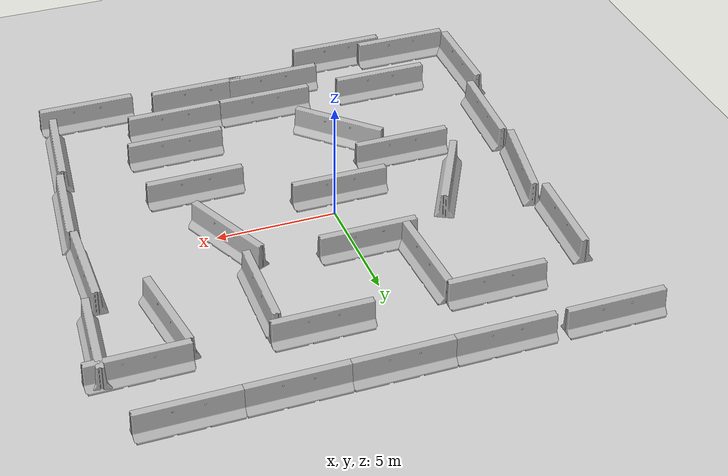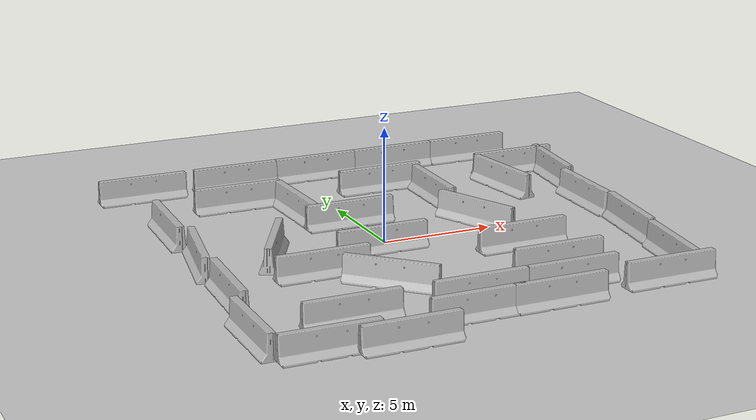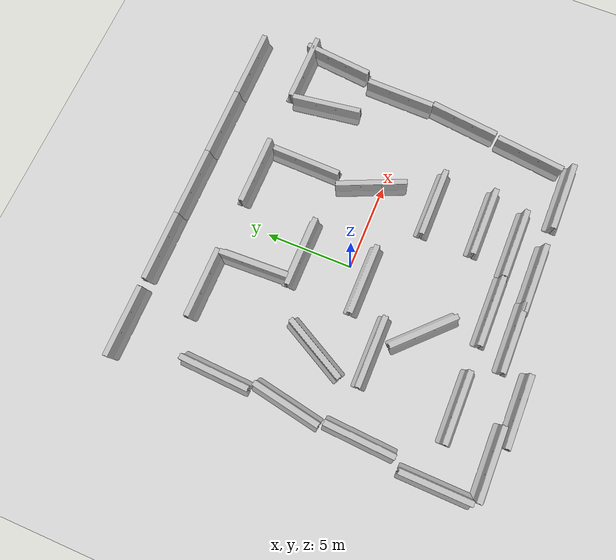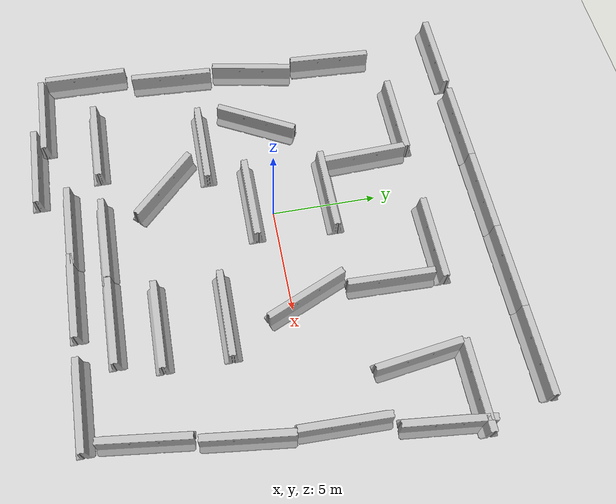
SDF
<sdf version="1.4">
 <world name="default">
  <light name="sun" type="directional">
   <pose>0 0 10 0 -0 0</pose>
   <diffuse>0.8 0.8 0.8 1</diffuse>
   <specular>0.2 0.2 0.2 1</specular>
   <attenuation>
    <range>1000</range>
    <constant>0.9</constant>
    <linear>0.01</linear>
    <quadratic>0.001</quadratic>
   </attenuation>
   <direction>-0.5 0.1 -0.9</direction>
  </light>
  <model name="ground_plane">
   <static>1</static>
   <link name="link">
    <collision name="collision">
     <geometry><plane><normal>0 0 1</normal><size>100 100</size></plane></geometry>
     <surface><friction><ode><mu>100</mu><mu2>50</mu2></ode></friction></surface>
    </collision>
    <visual name="visual">
     <cast_shadows>0</cast_shadows>
     <geometry><plane><normal>0 0 1</normal><size>100 100</size></plane></geometry>
     <material>
      <script><uri>file://media/materials/scripts/gazebo.material</uri><name>Gazebo/Grey</name></script>
     </material>
    </visual>
    <velocity_decay><linear>0</linear><angular>0</angular></velocity_decay>
   </link>
  </model>
  <physics type="ode">
   <max_step_size>0.001</max_step_size>
   <real_time_factor>1</real_time_factor>
   <real_time_update_rate>1000</real_time_update_rate>
   <gravity>0 0 -9.8</gravity>
  </physics>
  <scene><ambient>0.4 0.4 0.4 1</ambient><background>0.7 0.7 0.7 1</background><shadows>1</shadows></scene>
  <spherical_coordinates>
   <surface_model>EARTH_WGS84</surface_model>
   <latitude_deg>0</latitude_deg>
   <longitude_deg>0</longitude_deg>
   <elevation>0</elevation>
   <heading_deg>0</heading_deg>
  </spherical_coordinates>
  <model name="jersey_barrier">
   <static>1</static>
   <link name="link">
    <visual name="visual">
     <geometry><mesh><uri>model://jersey_barrier/meshes/jersey_barrier.dae</uri></mesh></geometry>
    </visual>
    <collision name="upright">
     <pose>0 0 0.5715 0 -0 0</pose>
     <geometry><box><size>4.06542 0.3063 1.143</size></box></geometry>
    </collision>
    <collision name="base">
     <pose>0 0 0.032258 0 -0 0</pose>
     <geometry><box><size>4.06542 0.8107 0.064516</size></box></geometry>
    </collision>
    <collision name="base2">
     <pose>0 0 0.1 0 -0 0</pose>
     <geometry><box><size>4.06542 0.65 0.1</size></box></geometry>
    </collision>
    <collision name="base3">
     <pose>0 0 0.2 0 -0 0</pose>
     <geometry><box><size>4.06542 0.5 0.1</size></box></geometry>
    </collision>
    <collision name="left-angle">
     <pose>0 -0.224 0.2401 0.9 -0 0</pose>
     <geometry><box><size>4.06542 0.5 0.064516</size></box></geometry>
    </collision>
    <collision name="right-angle">
     <pose>0 0.224 0.2401 -0.9 0 0</pose>
     <geometry><box><size>4.06542 0.5 0.064516</size></box></geometry>
    </collision>
    <velocity_decay><linear>0</linear><angular>0</angular></velocity_decay>
   </link>
   <pose>7.97668 -9.58752 0.147865 0 -0 0</pose>
  </model>
  <model name="jersey_barrier_0">
   <static>1</static>
   <link name="link">
    <visual name="visual">
     <geometry><mesh><uri>model://jersey_barrier/meshes/jersey_barrier.dae</uri></mesh></geometry>
    </visual>
    <collision name="upright">
     <pose>0 0 0.5715 0 -0 0</pose>
     <geometry><box><size>4.06542 0.3063 1.143</size></box></geometry>
    </collision>
    <collision name="base">
     <pose>0 0 0.032258 0 -0 0</pose>
     <geometry><box><size>4.06542 0.8107 0.064516</size></box></geometry>
    </collision>
    <collision name="base2">
     <pose>0 0 0.1 0 -0 0</pose>
     <geometry><box><size>4.06542 0.65 0.1</size></box></geometry>
    </collision>
    <collision name="base3">
     <pose>0 0 0.2 0 -0 0</pose>
     <geometry><box><size>4.06542 0.5 0.1</size></box></geometry>
    </collision>
    <collision name="left-angle">
     <pose>0 -0.224 0.2401 0.9 -0 0</pose>
     <geometry><box><size>4.06542 0.5 0.064516</size></box></geometry>
    </collision>
    <collision name="right-angle">
     <pose>0 0.224 0.2401 -0.9 0 0</pose>
     <geometry><box><size>4.06542 0.5 0.064516</size></box></geometry>
    </collision>
    <velocity_decay><linear>0</linear><angular>0</angular></velocity_decay>
   </link>
   <pose>3 -9.59869 0 0 -0 0</pose>
  </model>
  <model name="jersey_barrier_1">
   <static>1</static>
   <link name="link">
    <visual name="visual">
     <geometry><mesh><uri>model://jersey_barrier/meshes/jersey_barrier.dae</uri></mesh></geometry>
    </visual>
    <collision name="upright">
     <pose>0 0 0.5715 0 -0 0</pose>
     <geometry><box><size>4.06542 0.3063 1.143</size></box></geometry>
    </collision>
    <collision name="base">
     <pose>0 0 0.032258 0 -0 0</pose>
     <geometry><box><size>4.06542 0.8107 0.064516</size></box></geometry>
    </collision>
    <collision name="base2">
     <pose>0 0 0.1 0 -0 0</pose>
     <geometry><box><size>4.06542 0.65 0.1</size></box></geometry>
    </collision>
    <collision name="base3">
     <pose>0 0 0.2 0 -0 0</pose>
     <geometry><box><size>4.06542 0.5 0.1</size></box></geometry>
    </collision>
    <collision name="left-angle">
     <pose>0 -0.224 0.2401 0.9 -0 0</pose>
     <geometry><box><size>4.06542 0.5 0.064516</size></box></geometry>
    </collision>
    <collision name="right-angle">
     <pose>0 0.224 0.2401 -0.9 0 0</pose>
     <geometry><box><size>4.06542 0.5 0.064516</size></box></geometry>
    </collision>
    <velocity_decay><linear>0</linear><angular>0</angular></velocity_decay>
   </link>
   <pose>4.47361 -8 0 0 -0 0</pose>
  </model>
  <model name="jersey_barrier_2">
   <static>1</static>
   <link name="link">
    <visual name="visual">
     <geometry><mesh><uri>model://jersey_barrier/meshes/jersey_barrier.dae</uri></mesh></geometry>
    </visual>
    <collision name="upright">
     <pose>0 0 0.5715 0 -0 0</pose>
     <geometry><box><size>4.06542 0.3063 1.143</size></box></geometry>
    </collision>
    <collision name="base">
     <pose>0 0 0.032258 0 -0 0</pose>
     <geometry><box><size>4.06542 0.8107 0.064516</size></box></geometry>
    </collision>
    <collision name="base2">
     <pose>0 0 0.1 0 -0 0</pose>
     <geometry><box><size>4.06542 0.65 0.1</size></box></geometry>
    </collision>
    <collision name="base3">
     <pose>0 0 0.2 0 -0 0</pose>
     <geometry><box><size>4.06542 0.5 0.1</size></box></geometry>
    </collision>
    <collision name="left-angle">
     <pose>0 -0.224 0.2401 0.9 -0 0</pose>
     <geometry><box><size>4.06542 0.5 0.064516</size></box></geometry>
    </collision>
    <collision name="right-angle">
     <pose>0 0.224 0.2401 -0.9 0 0</pose>
     <geometry><box><size>4.06542 0.5 0.064516</size></box></geometry>
    </collision>
    <velocity_decay><linear>0</linear><angular>0</angular></velocity_decay>
   </link>
   <pose>0.406529 -8 0 0 -0 0</pose>
  </model>
  <model name="jersey_barrier_3">
   <static>1</static>
   <link name="link">
    <visual name="visual">
     <geometry><mesh><uri>model://jersey_barrier/meshes/jersey_barrier.dae</uri></mesh></geometry>
    </visual>
    <collision name="upright">
     <pose>0 0 0.5715 0 -0 0</pose>
     <geometry><box><size>4.06542 0.3063 1.143</size></box></geometry>
    </collision>
    <collision name="base">
     <pose>0 0 0.032258 0 -0 0</pose>
     <geometry><box><size>4.06542 0.8107 0.064516</size></box></geometry>
    </collision>
    <collision name="base2">
     <pose>0 0 0.1 0 -0 0</pose>
     <geometry><box><size>4.06542 0.65 0.1</size></box></geometry>
    </collision>
    <collision name="base3">
     <pose>0 0 0.2 0 -0 0</pose>
     <geometry><box><size>4.06542 0.5 0.1</size></box></geometry>
    </collision>
    <collision name="left-angle">
     <pose>0 -0.224 0.2401 0.9 -0 0</pose>
     <geometry><box><size>4.06542 0.5 0.064516</size></box></geometry>
    </collision>
    <collision name="right-angle">
     <pose>0 0.224 0.2401 -0.9 0 0</pose>
     <geometry><box><size>4.06542 0.5 0.064516</size></box></geometry>
    </collision>
    <velocity_decay><linear>0</linear><angular>0</angular></velocity_decay>
   </link>
   <pose>-0.489482 -9.56042 0 0 -0 0</pose>
  </model>
  <model name="jersey_barrier_4">
   <static>1</static>
   <link name="link">
    <visual name="visual">
     <geometry><mesh><uri>model://jersey_barrier/meshes/jersey_barrier.dae</uri></mesh></geometry>
    </visual>
    <collision name="upright">
     <pose>0 0 0.5715 0 -0 0</pose>
     <geometry><box><size>4.06542 0.3063 1.143</size></box></geometry>
    </collision>
    <collision name="base">
     <pose>0 0 0.032258 0 -0 0</pose>
     <geometry><box><size>4.06542 0.8107 0.064516</size></box></geometry>
    </collision>
    <collision name="base2">
     <pose>0 0 0.1 0 -0 0</pose>
     <geometry><box><size>4.06542 0.65 0.1</size></box></geometry>
    </collision>
    <collision name="base3">
     <pose>0 0 0.2 0 -0 0</pose>
     <geometry><box><size>4.06542 0.5 0.1</size></box></geometry>
    </collision>
    <collision name="left-angle">
     <pose>0 -0.224 0.2401 0.9 -0 0</pose>
     <geometry><box><size>4.06542 0.5 0.064516</size></box></geometry>
    </collision>
    <collision name="right-angle">
     <pose>0 0.224 0.2401 -0.9 0 0</pose>
     <geometry><box><size>4.06542 0.5 0.064516</size></box></geometry>
    </collision>
    <velocity_decay><linear>0</linear><angular>0</angular></velocity_decay>
   </link>
   <pose>5 -6 0 0 -0 0</pose>
  </model>
  <model name="jersey_barrier_5">
   <static>1</static>
   <link name="link">
    <visual name="visual">
     <geometry><mesh><uri>model://jersey_barrier/meshes/jersey_barrier.dae</uri></mesh></geometry>
    </visual>
    <collision name="upright">
     <pose>0 0 0.5715 0 -0 0</pose>
     <geometry><box><size>4.06542 0.3063 1.143</size></box></geometry>
    </collision>
    <collision name="base">
     <pose>0 0 0.032258 0 -0 0</pose>
     <geometry><box><size>4.06542 0.8107 0.064516</size></box></geometry>
    </collision>
    <collision name="base2">
     <pose>0 0 0.1 0 -0 0</pose>
     <geometry><box><size>4.06542 0.65 0.1</size></box></geometry>
    </collision>
    <collision name="base3">
     <pose>0 0 0.2 0 -0 0</pose>
     <geometry><box><size>4.06542 0.5 0.1</size></box></geometry>
    </collision>
    <collision name="left-angle">
     <pose>0 -0.224 0.2401 0.9 -0 0</pose>
     <geometry><box><size>4.06542 0.5 0.064516</size></box></geometry>
    </collision>
    <collision name="right-angle">
     <pose>0 0.224 0.2401 -0.9 0 0</pose>
     <geometry><box><size>4.06542 0.5 0.064516</size></box></geometry>
    </collision>
    <velocity_decay><linear>0</linear><angular>0</angular></velocity_decay>
   </link>
   <pose>9.79167 -7.07228 0 -4.5e-05 0.000384 1.45415</pose>
  </model>
  <model name="jersey_barrier_6">
   <static>1</static>
   <link name="link">
    <visual name="visual">
     <geometry><mesh><uri>model://jersey_barrier/meshes/jersey_barrier.dae</uri></mesh></geometry>
    </visual>
    <collision name="upright">
     <pose>0 0 0.5715 0 -0 0</pose>
     <geometry><box><size>4.06542 0.3063 1.143</size></box></geometry>
    </collision>
    <collision name="base">
     <pose>0 0 0.032258 0 -0 0</pose>
     <geometry><box><size>4.06542 0.8107 0.064516</size></box></geometry>
    </collision>
    <collision name="base2">
     <pose>0 0 0.1 0 -0 0</pose>
     <geometry><box><size>4.06542 0.65 0.1</size></box></geometry>
    </collision>
    <collision name="base3">
     <pose>0 0 0.2 0 -0 0</pose>
     <geometry><box><size>4.06542 0.5 0.1</size></box></geometry>
    </collision>
    <collision name="left-angle">
     <pose>0 -0.224 0.2401 0.9 -0 0</pose>
     <geometry><box><size>4.06542 0.5 0.064516</size></box></geometry>
    </collision>
    <collision name="right-angle">
     <pose>0 0.224 0.2401 -0.9 0 0</pose>
     <geometry><box><size>4.06542 0.5 0.064516</size></box></geometry>
    </collision>
    <velocity_decay><linear>0</linear><angular>0</angular></velocity_decay>
   </link>
   <pose>-7.48898 10 0 0 -0 0</pose>
  </model>
  <model name="jersey_barrier_7">
   <static>1</static>
   <link name="link">
    <visual name="visual">
     <geometry><mesh><uri>model://jersey_barrier/meshes/jersey_barrier.dae</uri></mesh></geometry>
    </visual>
    <collision name="upright">
     <pose>0 0 0.5715 0 -0 0</pose>
     <geometry><box><size>4.06542 0.3063 1.143</size></box></geometry>
    </collision>
    <collision name="base">
     <pose>0 0 0.032258 0 -0 0</pose>
     <geometry><box><size>4.06542 0.8107 0.064516</size></box></geometry>
    </collision>
    <collision name="base2">
     <pose>0 0 0.1 0 -0 0</pose>
     <geometry><box><size>4.06542 0.65 0.1</size></box></geometry>
    </collision>
    <collision name="base3">
     <pose>0 0 0.2 0 -0 0</pose>
     <geometry><box><size>4.06542 0.5 0.1</size></box></geometry>
    </collision>
    <collision name="left-angle">
     <pose>0 -0.224 0.2401 0.9 -0 0</pose>
     <geometry><box><size>4.06542 0.5 0.064516</size></box></geometry>
    </collision>
    <collision name="right-angle">
     <pose>0 0.224 0.2401 -0.9 0 0</pose>
     <geometry><box><size>4.06542 0.5 0.064516</size></box></geometry>
    </collision>
    <velocity_decay><linear>0</linear><angular>0</angular></velocity_decay>
   </link>
   <pose>-3 10 0 0 -0 0</pose>
  </model>
  <model name="jersey_barrier_8">
   <static>1</static>
   <link name="link">
    <visual name="visual">
     <geometry><mesh><uri>model://jersey_barrier/meshes/jersey_barrier.dae</uri></mesh></geometry>
    </visual>
    <collision name="upright">
     <pose>0 0 0.5715 0 -0 0</pose>
     <geometry><box><size>4.06542 0.3063 1.143</size></box></geometry>
    </collision>
    <collision name="base">
     <pose>0 0 0.032258 0 -0 0</pose>
     <geometry><box><size>4.06542 0.8107 0.064516</size></box></geometry>
    </collision>
    <collision name="base2">
     <pose>0 0 0.1 0 -0 0</pose>
     <geometry><box><size>4.06542 0.65 0.1</size></box></geometry>
    </collision>
    <collision name="base3">
     <pose>0 0 0.2 0 -0 0</pose>
     <geometry><box><size>4.06542 0.5 0.1</size></box></geometry>
    </collision>
    <collision name="left-angle">
     <pose>0 -0.224 0.2401 0.9 -0 0</pose>
     <geometry><box><size>4.06542 0.5 0.064516</size></box></geometry>
    </collision>
    <collision name="right-angle">
     <pose>0 0.224 0.2401 -0.9 0 0</pose>
     <geometry><box><size>4.06542 0.5 0.064516</size></box></geometry>
    </collision>
    <velocity_decay><linear>0</linear><angular>0</angular></velocity_decay>
   </link>
   <pose>1 10 0 0 -0 0</pose>
  </model>
  <model name="jersey_barrier_9">
   <static>1</static>
   <link name="link">
    <visual name="visual">
     <geometry><mesh><uri>model://jersey_barrier/meshes/jersey_barrier.dae</uri></mesh></geometry>
    </visual>
    <collision name="upright">
     <pose>0 0 0.5715 0 -0 0</pose>
     <geometry><box><size>4.06542 0.3063 1.143</size></box></geometry>
    </collision>
    <collision name="base">
     <pose>0 0 0.032258 0 -0 0</pose>
     <geometry><box><size>4.06542 0.8107 0.064516</size></box></geometry>
    </collision>
    <collision name="base2">
     <pose>0 0 0.1 0 -0 0</pose>
     <geometry><box><size>4.06542 0.65 0.1</size></box></geometry>
    </collision>
    <collision name="base3">
     <pose>0 0 0.2 0 -0 0</pose>
     <geometry><box><size>4.06542 0.5 0.1</size></box></geometry>
    </collision>
    <collision name="left-angle">
     <pose>0 -0.224 0.2401 0.9 -0 0</pose>
     <geometry><box><size>4.06542 0.5 0.064516</size></box></geometry>
    </collision>
    <collision name="right-angle">
     <pose>0 0.224 0.2401 -0.9 0 0</pose>
     <geometry><box><size>4.06542 0.5 0.064516</size></box></geometry>
    </collision>
    <velocity_decay><linear>0</linear><angular>0</angular></velocity_decay>
   </link>
   <pose>5 10 0 0 -0 0</pose>
  </model>
  <model name="jersey_barrier_10">
   <static>1</static>
   <link name="link">
    <visual name="visual">
     <geometry><mesh><uri>model://jersey_barrier/meshes/jersey_barrier.dae</uri></mesh></geometry>
    </visual>
    <collision name="upright">
     <pose>0 0 0.5715 0 -0 0</pose>
     <geometry><box><size>4.06542 0.3063 1.143</size></box></geometry>
    </collision>
    <collision name="base">
     <pose>0 0 0.032258 0 -0 0</pose>
     <geometry><box><size>4.06542 0.8107 0.064516</size></box></geometry>
    </collision>
    <collision name="base2">
     <pose>0 0 0.1 0 -0 0</pose>
     <geometry><box><size>4.06542 0.65 0.1</size></box></geometry>
    </collision>
    <collision name="base3">
     <pose>0 0 0.2 0 -0 0</pose>
     <geometry><box><size>4.06542 0.5 0.1</size></box></geometry>
    </collision>
    <collision name="left-angle">
     <pose>0 -0.224 0.2401 0.9 -0 0</pose>
     <geometry><box><size>4.06542 0.5 0.064516</size></box></geometry>
    </collision>
    <collision name="right-angle">
     <pose>0 0.224 0.2401 -0.9 0 0</pose>
     <geometry><box><size>4.06542 0.5 0.064516</size></box></geometry>
    </collision>
    <velocity_decay><linear>0</linear><angular>0</angular></velocity_decay>
   </link>
   <pose>9 10 0 0 -0 0</pose>
  </model>
  <model name="jersey_barrier_11">
   <static>1</static>
   <link name="link">
    <visual name="visual">
     <geometry><mesh><uri>model://jersey_barrier/meshes/jersey_barrier.dae</uri></mesh></geometry>
    </visual>
    <collision name="upright">
     <pose>0 0 0.5715 0 -0 0</pose>
     <geometry><box><size>4.06542 0.3063 1.143</size></box></geometry>
    </collision>
    <collision name="base">
     <pose>0 0 0.032258 0 -0 0</pose>
     <geometry><box><size>4.06542 0.8107 0.064516</size></box></geometry>
    </collision>
    <collision name="base2">
     <pose>0 0 0.1 0 -0 0</pose>
     <geometry><box><size>4.06542 0.65 0.1</size></box></geometry>
    </collision>
    <collision name="base3">
     <pose>0 0 0.2 0 -0 0</pose>
     <geometry><box><size>4.06542 0.5 0.1</size></box></geometry>
    </collision>
    <collision name="left-angle">
     <pose>0 -0.224 0.2401 0.9 -0 0</pose>
     <geometry><box><size>4.06542 0.5 0.064516</size></box></geometry>
    </collision>
    <collision name="right-angle">
     <pose>0 0.224 0.2401 -0.9 0 0</pose>
     <geometry><box><size>4.06542 0.5 0.064516</size></box></geometry>
    </collision>
    <velocity_decay><linear>0</linear><angular>0</angular></velocity_decay>
   </link>
   <pose>10 7 0 0 -0 0</pose>
  </model>
  <model name="jersey_barrier_12">
   <static>1</static>
   <link name="link">
    <visual name="visual">
     <geometry><mesh><uri>model://jersey_barrier/meshes/jersey_barrier.dae</uri></mesh></geometry>
    </visual>
    <collision name="upright">
     <pose>0 0 0.5715 0 -0 0</pose>
     <geometry><box><size>4.06542 0.3063 1.143</size></box></geometry>
    </collision>
    <collision name="base">
     <pose>0 0 0.032258 0 -0 0</pose>
     <geometry><box><size>4.06542 0.8107 0.064516</size></box></geometry>
    </collision>
    <collision name="base2">
     <pose>0 0 0.1 0 -0 0</pose>
     <geometry><box><size>4.06542 0.65 0.1</size></box></geometry>
    </collision>
    <collision name="base3">
     <pose>0 0 0.2 0 -0 0</pose>
     <geometry><box><size>4.06542 0.5 0.1</size></box></geometry>
    </collision>
    <collision name="left-angle">
     <pose>0 -0.224 0.2401 0.9 -0 0</pose>
     <geometry><box><size>4.06542 0.5 0.064516</size></box></geometry>
    </collision>
    <collision name="right-angle">
     <pose>0 0.224 0.2401 -0.9 0 0</pose>
     <geometry><box><size>4.06542 0.5 0.064516</size></box></geometry>
    </collision>
    <velocity_decay><linear>0</linear><angular>0</angular></velocity_decay>
   </link>
   <pose>3 7 0 0 -0 0</pose>
  </model>
  <model name="jersey_barrier_13">
   <static>1</static>
   <link name="link">
    <visual name="visual">
     <geometry><mesh><uri>model://jersey_barrier/meshes/jersey_barrier.dae</uri></mesh></geometry>
    </visual>
    <collision name="upright">
     <pose>0 0 0.5715 0 -0 0</pose>
     <geometry><box><size>4.06542 0.3063 1.143</size></box></geometry>
    </collision>
    <collision name="base">
     <pose>0 0 0.032258 0 -0 0</pose>
     <geometry><box><size>4.06542 0.8107 0.064516</size></box></geometry>
    </collision>
    <collision name="base2">
     <pose>0 0 0.1 0 -0 0</pose>
     <geometry><box><size>4.06542 0.65 0.1</size></box></geometry>
    </collision>
    <collision name="base3">
     <pose>0 0 0.2 0 -0 0</pose>
     <geometry><box><size>4.06542 0.5 0.1</size></box></geometry>
    </collision>
    <collision name="left-angle">
     <pose>0 -0.224 0.2401 0.9 -0 0</pose>
     <geometry><box><size>4.06542 0.5 0.064516</size></box></geometry>
    </collision>
    <collision name="right-angle">
     <pose>0 0.224 0.2401 -0.9 0 0</pose>
     <geometry><box><size>4.06542 0.5 0.064516</size></box></geometry>
    </collision>
    <velocity_decay><linear>0</linear><angular>0</angular></velocity_decay>
   </link>
   <pose>-4 7 0 0 -0 0</pose>
  </model>
  <model name="jersey_barrier_14">
   <static>1</static>
   <link name="link">
    <visual name="visual">
     <geometry><mesh><uri>model://jersey_barrier/meshes/jersey_barrier.dae</uri></mesh></geometry>
    </visual>
    <collision name="upright">
     <pose>0 0 0.5715 0 -0 0</pose>
     <geometry><box><size>4.06542 0.3063 1.143</size></box></geometry>
    </collision>
    <collision name="base">
     <pose>0 0 0.032258 0 -0 0</pose>
     <geometry><box><size>4.06542 0.8107 0.064516</size></box></geometry>
    </collision>
    <collision name="base2">
     <pose>0 0 0.1 0 -0 0</pose>
     <geometry><box><size>4.06542 0.65 0.1</size></box></geometry>
    </collision>
    <collision name="base3">
     <pose>0 0 0.2 0 -0 0</pose>
     <geometry><box><size>4.06542 0.5 0.1</size></box></geometry>
    </collision>
    <collision name="left-angle">
     <pose>0 -0.224 0.2401 0.9 -0 0</pose>
     <geometry><box><size>4.06542 0.5 0.064516</size></box></geometry>
    </collision>
    <collision name="right-angle">
     <pose>0 0.224 0.2401 -0.9 0 0</pose>
     <geometry><box><size>4.06542 0.5 0.064516</size></box></geometry>
    </collision>
    <velocity_decay><linear>0</linear><angular>0</angular></velocity_decay>
   </link>
   <pose>-8.39366 -3.8984 0 0 -0 1.5157</pose>
  </model>
  <model name="jersey_barrier_15">
   <static>1</static>
   <link name="link">
    <visual name="visual">
     <geometry><mesh><uri>model://jersey_barrier/meshes/jersey_barrier.dae</uri></mesh></geometry>
    </visual>
    <collision name="upright">
     <pose>0 0 0.5715 0 -0 0</pose>
     <geometry><box><size>4.06542 0.3063 1.143</size></box></geometry>
    </collision>
    <collision name="base">
     <pose>0 0 0.032258 0 -0 0</pose>
     <geometry><box><size>4.06542 0.8107 0.064516</size></box></geometry>
    </collision>
    <collision name="base2">
     <pose>0 0 0.1 0 -0 0</pose>
     <geometry><box><size>4.06542 0.65 0.1</size></box></geometry>
    </collision>
    <collision name="base3">
     <pose>0 0 0.2 0 -0 0</pose>
     <geometry><box><size>4.06542 0.5 0.1</size></box></geometry>
    </collision>
    <collision name="left-angle">
     <pose>0 -0.224 0.2401 0.9 -0 0</pose>
     <geometry><box><size>4.06542 0.5 0.064516</size></box></geometry>
    </collision>
    <collision name="right-angle">
     <pose>0 0.224 0.2401 -0.9 0 0</pose>
     <geometry><box><size>4.06542 0.5 0.064516</size></box></geometry>
    </collision>
    <velocity_decay><linear>0</linear><angular>0</angular></velocity_decay>
   </link>
   <pose>-8.12659 4.37654 0 0 -0 1.52159</pose>
  </model>
  <model name="jersey_barrier_16">
   <static>1</static>
   <link name="link">
    <visual name="visual">
     <geometry><mesh><uri>model://jersey_barrier/meshes/jersey_barrier.dae</uri></mesh></geometry>
    </visual>
    <collision name="upright">
     <pose>0 0 0.5715 0 -0 0</pose>
     <geometry><box><size>4.06542 0.3063 1.143</size></box></geometry>
    </collision>
    <collision name="base">
     <pose>0 0 0.032258 0 -0 0</pose>
     <geometry><box><size>4.06542 0.8107 0.064516</size></box></geometry>
    </collision>
    <collision name="base2">
     <pose>0 0 0.1 0 -0 0</pose>
     <geometry><box><size>4.06542 0.65 0.1</size></box></geometry>
    </collision>
    <collision name="base3">
     <pose>0 0 0.2 0 -0 0</pose>
     <geometry><box><size>4.06542 0.5 0.1</size></box></geometry>
    </collision>
    <collision name="left-angle">
     <pose>0 -0.224 0.2401 0.9 -0 0</pose>
     <geometry><box><size>4.06542 0.5 0.064516</size></box></geometry>
    </collision>
    <collision name="right-angle">
     <pose>0 0.224 0.2401 -0.9 0 0</pose>
     <geometry><box><size>4.06542 0.5 0.064516</size></box></geometry>
    </collision>
    <velocity_decay><linear>0</linear><angular>0</angular></velocity_decay>
   </link>
   <pose>-9.08286 -8.28133 0 0 -0 1.55652</pose>
  </model>
  <model name="jersey_barrier_17">
   <static>1</static>
   <link name="link">
    <visual name="visual">
     <geometry><mesh><uri>model://jersey_barrier/meshes/jersey_barrier.dae</uri></mesh></geometry>
    </visual>
    <collision name="upright">
     <pose>0 0 0.5715 0 -0 0</pose>
     <geometry><box><size>4.06542 0.3063 1.143</size></box></geometry>
    </collision>
    <collision name="base">
     <pose>0 0 0.032258 0 -0 0</pose>
     <geometry><box><size>4.06542 0.8107 0.064516</size></box></geometry>
    </collision>
    <collision name="base2">
     <pose>0 0 0.1 0 -0 0</pose>
     <geometry><box><size>4.06542 0.65 0.1</size></box></geometry>
    </collision>
    <collision name="base3">
     <pose>0 0 0.2 0 -0 0</pose>
     <geometry><box><size>4.06542 0.5 0.1</size></box></geometry>
    </collision>
    <collision name="left-angle">
     <pose>0 -0.224 0.2401 0.9 -0 0</pose>
     <geometry><box><size>4.06542 0.5 0.064516</size></box></geometry>
    </collision>
    <collision name="right-angle">
     <pose>0 0.224 0.2401 -0.9 0 0</pose>
     <geometry><box><size>4.06542 0.5 0.064516</size></box></geometry>
    </collision>
    <velocity_decay><linear>0</linear><angular>0</angular></velocity_decay>
   </link>
   <pose>-8.17767 0.266074 0 0 -0 1.38958</pose>
  </model>
  <model name="jersey_barrier_18">
   <static>1</static>
   <link name="link">
    <visual name="visual">
     <geometry><mesh><uri>model://jersey_barrier/meshes/jersey_barrier.dae</uri></mesh></geometry>
    </visual>
    <collision name="upright">
     <pose>0 0 0.5715 0 -0 0</pose>
     <geometry><box><size>4.06542 0.3063 1.143</size></box></geometry>
    </collision>
    <collision name="base">
     <pose>0 0 0.032258 0 -0 0</pose>
     <geometry><box><size>4.06542 0.8107 0.064516</size></box></geometry>
    </collision>
    <collision name="base2">
     <pose>0 0 0.1 0 -0 0</pose>
     <geometry><box><size>4.06542 0.65 0.1</size></box></geometry>
    </collision>
    <collision name="base3">
     <pose>0 0 0.2 0 -0 0</pose>
     <geometry><box><size>4.06542 0.5 0.1</size></box></geometry>
    </collision>
    <collision name="left-angle">
     <pose>0 -0.224 0.2401 0.9 -0 0</pose>
     <geometry><box><size>4.06542 0.5 0.064516</size></box></geometry>
    </collision>
    <collision name="right-angle">
     <pose>0 0.224 0.2401 -0.9 0 0</pose>
     <geometry><box><size>4.06542 0.5 0.064516</size></box></geometry>
    </collision>
    <velocity_decay><linear>0</linear><angular>0</angular></velocity_decay>
   </link>
   <pose>8.29274 4.87201 0 0 0 -1.4296</pose>
  </model>
  <model name="jersey_barrier_19">
   <static>1</static>
   <link name="link">
    <visual name="visual">
     <geometry><mesh><uri>model://jersey_barrier/meshes/jersey_barrier.dae</uri></mesh></geometry>
    </visual>
    <collision name="upright">
     <pose>0 0 0.5715 0 -0 0</pose>
     <geometry><box><size>4.06542 0.3063 1.143</size></box></geometry>
    </collision>
    <collision name="base">
     <pose>0 0 0.032258 0 -0 0</pose>
     <geometry><box><size>4.06542 0.8107 0.064516</size></box></geometry>
    </collision>
    <collision name="base2">
     <pose>0 0 0.1 0 -0 0</pose>
     <geometry><box><size>4.06542 0.65 0.1</size></box></geometry>
    </collision>
    <collision name="base3">
     <pose>0 0 0.2 0 -0 0</pose>
     <geometry><box><size>4.06542 0.5 0.1</size></box></geometry>
    </collision>
    <collision name="left-angle">
     <pose>0 -0.224 0.2401 0.9 -0 0</pose>
     <geometry><box><size>4.06542 0.5 0.064516</size></box></geometry>
    </collision>
    <collision name="right-angle">
     <pose>0 0.224 0.2401 -0.9 0 0</pose>
     <geometry><box><size>4.06542 0.5 0.064516</size></box></geometry>
    </collision>
    <velocity_decay><linear>0</linear><angular>0</angular></velocity_decay>
   </link>
   <pose>4.59518 4.57545 0 0 0 -1.59128</pose>
  </model>
  <model name="jersey_barrier_20">
   <static>1</static>
   <link name="link">
    <visual name="visual">
     <geometry><mesh><uri>model://jersey_barrier/meshes/jersey_barrier.dae</uri></mesh></geometry>
    </visual>
    <collision name="upright">
     <pose>0 0 0.5715 0 -0 0</pose>
     <geometry><box><size>4.06542 0.3063 1.143</size></box></geometry>
    </collision>
    <collision name="base">
     <pose>0 0 0.032258 0 -0 0</pose>
     <geometry><box><size>4.06542 0.8107 0.064516</size></box></geometry>
    </collision>
    <collision name="base2">
     <pose>0 0 0.1 0 -0 0</pose>
     <geometry><box><size>4.06542 0.65 0.1</size></box></geometry>
    </collision>
    <collision name="base3">
     <pose>0 0 0.2 0 -0 0</pose>
     <geometry><box><size>4.06542 0.5 0.1</size></box></geometry>
    </collision>
    <collision name="left-angle">
     <pose>0 -0.224 0.2401 0.9 -0 0</pose>
     <geometry><box><size>4.06542 0.5 0.064516</size></box></geometry>
    </collision>
    <collision name="right-angle">
     <pose>0 0.224 0.2401 -0.9 0 0</pose>
     <geometry><box><size>4.06542 0.5 0.064516</size></box></geometry>
    </collision>
    <velocity_decay><linear>0</linear><angular>0</angular></velocity_decay>
   </link>
   <pose>-6.98006 -10.5337 0 0 -0 0</pose>
  </model>
  <model name="jersey_barrier_21">
   <static>1</static>
   <link name="link">
    <visual name="visual">
     <geometry><mesh><uri>model://jersey_barrier/meshes/jersey_barrier.dae</uri></mesh></geometry>
    </visual>
    <collision name="upright">
     <pose>0 0 0.5715 0 -0 0</pose>
     <geometry><box><size>4.06542 0.3063 1.143</size></box></geometry>
    </collision>
    <collision name="base">
     <pose>0 0 0.032258 0 -0 0</pose>
     <geometry><box><size>4.06542 0.8107 0.064516</size></box></geometry>
    </collision>
    <collision name="base2">
     <pose>0 0 0.1 0 -0 0</pose>
     <geometry><box><size>4.06542 0.65 0.1</size></box></geometry>
    </collision>
    <collision name="base3">
     <pose>0 0 0.2 0 -0 0</pose>
     <geometry><box><size>4.06542 0.5 0.1</size></box></geometry>
    </collision>
    <collision name="left-angle">
     <pose>0 -0.224 0.2401 0.9 -0 0</pose>
     <geometry><box><size>4.06542 0.5 0.064516</size></box></geometry>
    </collision>
    <collision name="right-angle">
     <pose>0 0.224 0.2401 -0.9 0 0</pose>
     <geometry><box><size>4.06542 0.5 0.064516</size></box></geometry>
    </collision>
    <velocity_decay><linear>0</linear><angular>0</angular></velocity_decay>
   </link>
   <pose>-2.01428 4.89004 0 0 0 -1.53468</pose>
  </model>
  <model name="jersey_barrier_22">
   <static>1</static>
   <link name="link">
    <visual name="visual">
     <geometry><mesh><uri>model://jersey_barrier/meshes/jersey_barrier.dae</uri></mesh></geometry>
    </visual>
    <collision name="upright">
     <pose>0 0 0.5715 0 -0 0</pose>
     <geometry><box><size>4.06542 0.3063 1.143</size></box></geometry>
    </collision>
    <collision name="base">
     <pose>0 0 0.032258 0 -0 0</pose>
     <geometry><box><size>4.06542 0.8107 0.064516</size></box></geometry>
    </collision>
    <collision name="base2">
     <pose>0 0 0.1 0 -0 0</pose>
     <geometry><box><size>4.06542 0.65 0.1</size></box></geometry>
    </collision>
    <collision name="base3">
     <pose>0 0 0.2 0 -0 0</pose>
     <geometry><box><size>4.06542 0.5 0.1</size></box></geometry>
    </collision>
    <collision name="left-angle">
     <pose>0 -0.224 0.2401 0.9 -0 0</pose>
     <geometry><box><size>4.06542 0.5 0.064516</size></box></geometry>
    </collision>
    <collision name="right-angle">
     <pose>0 0.224 0.2401 -0.9 0 0</pose>
     <geometry><box><size>4.06542 0.5 0.064516</size></box></geometry>
    </collision>
    <velocity_decay><linear>0</linear><angular>0</angular></velocity_decay>
   </link>
   <pose>11.2421 5.3498 0 0 -0 1.47252</pose>
  </model>
  <model name="jersey_barrier_23">
   <static>1</static>
   <link name="link">
    <visual name="visual">
     <geometry><mesh><uri>model://jersey_barrier/meshes/jersey_barrier.dae</uri></mesh></geometry>
    </visual>
    <collision name="upright">
     <pose>0 0 0.5715 0 -0 0</pose>
     <geometry><box><size>4.06542 0.3063 1.143</size></box></geometry>
    </collision>
    <collision name="base">
     <pose>0 0 0.032258 0 -0 0</pose>
     <geometry><box><size>4.06542 0.8107 0.064516</size></box></geometry>
    </collision>
    <collision name="base2">
     <pose>0 0 0.1 0 -0 0</pose>
     <geometry><box><size>4.06542 0.65 0.1</size></box></geometry>
    </collision>
    <collision name="base3">
     <pose>0 0 0.2 0 -0 0</pose>
     <geometry><box><size>4.06542 0.5 0.1</size></box></geometry>
    </collision>
    <collision name="left-angle">
     <pose>0 -0.224 0.2401 0.9 -0 0</pose>
     <geometry><box><size>4.06542 0.5 0.064516</size></box></geometry>
    </collision>
    <collision name="right-angle">
     <pose>0 0.224 0.2401 -0.9 0 0</pose>
     <geometry><box><size>4.06542 0.5 0.064516</size></box></geometry>
    </collision>
    <velocity_decay><linear>0</linear><angular>0</angular></velocity_decay>
   </link>
   <pose>10.5474 1.13284 0 0 0 -1.58786</pose>
  </model>
  <model name="jersey_barrier_24">
   <static>1</static>
   <link name="link">
    <visual name="visual">
     <geometry><mesh><uri>model://jersey_barrier/meshes/jersey_barrier.dae</uri></mesh></geometry>
    </visual>
    <collision name="upright">
     <pose>0 0 0.5715 0 -0 0</pose>
     <geometry><box><size>4.06542 0.3063 1.143</size></box></geometry>
    </collision>
    <collision name="base">
     <pose>0 0 0.032258 0 -0 0</pose>
     <geometry><box><size>4.06542 0.8107 0.064516</size></box></geometry>
    </collision>
    <collision name="base2">
     <pose>0 0 0.1 0 -0 0</pose>
     <geometry><box><size>4.06542 0.65 0.1</size></box></geometry>
    </collision>
    <collision name="base3">
     <pose>0 0 0.2 0 -0 0</pose>
     <geometry><box><size>4.06542 0.5 0.1</size></box></geometry>
    </collision>
    <collision name="left-angle">
     <pose>0 -0.224 0.2401 0.9 -0 0</pose>
     <geometry><box><size>4.06542 0.5 0.064516</size></box></geometry>
    </collision>
    <collision name="right-angle">
     <pose>0 0.224 0.2401 -0.9 0 0</pose>
     <geometry><box><size>4.06542 0.5 0.064516</size></box></geometry>
    </collision>
    <velocity_decay><linear>0</linear><angular>0</angular></velocity_decay>
   </link>
   <pose>10.4019 -2.89653 0 0 -0 1.45765</pose>
  </model>
  <model name="jersey_barrier_25">
   <static>1</static>
   <link name="link">
    <visual name="visual">
     <geometry><mesh><uri>model://jersey_barrier/meshes/jersey_barrier.dae</uri></mesh></geometry>
    </visual>
    <collision name="upright">
     <pose>0 0 0.5715 0 -0 0</pose>
     <geometry><box><size>4.06542 0.3063 1.143</size></box></geometry>
    </collision>
    <collision name="base">
     <pose>0 0 0.032258 0 -0 0</pose>
     <geometry><box><size>4.06542 0.8107 0.064516</size></box></geometry>
    </collision>
    <collision name="base2">
     <pose>0 0 0.1 0 -0 0</pose>
     <geometry><box><size>4.06542 0.65 0.1</size></box></geometry>
    </collision>
    <collision name="base3">
     <pose>0 0 0.2 0 -0 0</pose>
     <geometry><box><size>4.06542 0.5 0.1</size></box></geometry>
    </collision>
    <collision name="left-angle">
     <pose>0 -0.224 0.2401 0.9 -0 0</pose>
     <geometry><box><size>4.06542 0.5 0.064516</size></box></geometry>
    </collision>
    <collision name="right-angle">
     <pose>0 0.224 0.2401 -0.9 0 0</pose>
     <geometry><box><size>4.06542 0.5 0.064516</size></box></geometry>
    </collision>
    <velocity_decay><linear>0</linear><angular>0</angular></velocity_decay>
   </link>
   <pose>-0.396769 2.73698 0 0 -0 0</pose>
  </model>
  <model name="jersey_barrier_26">
   <static>1</static>
   <link name="link">
    <visual name="visual">
     <geometry><mesh><uri>model://jersey_barrier/meshes/jersey_barrier.dae</uri></mesh></geometry>
    </visual>
    <collision name="upright">
     <pose>0 0 0.5715 0 -0 0</pose>
     <geometry><box><size>4.06542 0.3063 1.143</size></box></geometry>
    </collision>
    <collision name="base">
     <pose>0 0 0.032258 0 -0 0</pose>
     <geometry><box><size>4.06542 0.8107 0.064516</size></box></geometry>
    </collision>
    <collision name="base2">
     <pose>0 0 0.1 0 -0 0</pose>
     <geometry><box><size>4.06542 0.65 0.1</size></box></geometry>
    </collision>
    <collision name="base3">
     <pose>0 0 0.2 0 -0 0</pose>
     <geometry><box><size>4.06542 0.5 0.1</size></box></geometry>
    </collision>
    <collision name="left-angle">
     <pose>0 -0.224 0.2401 0.9 -0 0</pose>
     <geometry><box><size>4.06542 0.5 0.064516</size></box></geometry>
    </collision>
    <collision name="right-angle">
     <pose>0 0.224 0.2401 -0.9 0 0</pose>
     <geometry><box><size>4.06542 0.5 0.064516</size></box></geometry>
    </collision>
    <velocity_decay><linear>0</linear><angular>0</angular></velocity_decay>
   </link>
   <pose>-4 -11 0 0 -0 0</pose>
  </model>
  <model name="jersey_barrier_27">
   <static>1</static>
   <link name="link">
    <visual name="visual">
     <geometry><mesh><uri>model://jersey_barrier/meshes/jersey_barrier.dae</uri></mesh></geometry>
    </visual>
    <collision name="upright">
     <pose>0 0 0.5715 0 -0 0</pose>
     <geometry><box><size>4.06542 0.3063 1.143</size></box></geometry>
    </collision>
    <collision name="base">
     <pose>0 0 0.032258 0 -0 0</pose>
     <geometry><box><size>4.06542 0.8107 0.064516</size></box></geometry>
    </collision>
    <collision name="base2">
     <pose>0 0 0.1 0 -0 0</pose>
     <geometry><box><size>4.06542 0.65 0.1</size></box></geometry>
    </collision>
    <collision name="base3">
     <pose>0 0 0.2 0 -0 0</pose>
     <geometry><box><size>4.06542 0.5 0.1</size></box></geometry>
    </collision>
    <collision name="left-angle">
     <pose>0 -0.224 0.2401 0.9 -0 0</pose>
     <geometry><box><size>4.06542 0.5 0.064516</size></box></geometry>
    </collision>
    <collision name="right-angle">
     <pose>0 0.224 0.2401 -0.9 0 0</pose>
     <geometry><box><size>4.06542 0.5 0.064516</size></box></geometry>
    </collision>
    <velocity_decay><linear>0</linear><angular>0</angular></velocity_decay>
   </link>
   <pose>-5 -8 0 0 -0 0</pose>
  </model>
  <model name="jersey_barrier_28">
   <static>1</static>
   <link name="link">
    <visual name="visual">
     <geometry><mesh><uri>model://jersey_barrier/meshes/jersey_barrier.dae</uri></mesh></geometry>
    </visual>
    <collision name="upright">
     <pose>0 0 0.5715 0 -0 0</pose>
     <geometry><box><size>4.06542 0.3063 1.143</size></box></geometry>
    </collision>
    <collision name="base">
     <pose>0 0 0.032258 0 -0 0</pose>
     <geometry><box><size>4.06542 0.8107 0.064516</size></box></geometry>
    </collision>
    <collision name="base2">
     <pose>0 0 0.1 0 -0 0</pose>
     <geometry><box><size>4.06542 0.65 0.1</size></box></geometry>
    </collision>
    <collision name="base3">
     <pose>0 0 0.2 0 -0 0</pose>
     <geometry><box><size>4.06542 0.5 0.1</size></box></geometry>
    </collision>
    <collision name="left-angle">
     <pose>0 -0.224 0.2401 0.9 -0 0</pose>
     <geometry><box><size>4.06542 0.5 0.064516</size></box></geometry>
    </collision>
    <collision name="right-angle">
     <pose>0 0.224 0.2401 -0.9 0 0</pose>
     <geometry><box><size>4.06542 0.5 0.064516</size></box></geometry>
    </collision>
    <velocity_decay><linear>0</linear><angular>0</angular></velocity_decay>
   </link>
   <pose>-0.55444 -1 0 0 -0 0</pose>
  </model>
  <model name="jersey_barrier_29">
   <static>1</static>
   <link name="link">
    <visual name="visual">
     <geometry><mesh><uri>model://jersey_barrier/meshes/jersey_barrier.dae</uri></mesh></geometry>
    </visual>
    <collision name="upright">
     <pose>0 0 0.5715 0 -0 0</pose>
     <geometry><box><size>4.06542 0.3063 1.143</size></box></geometry>
    </collision>
    <collision name="base">
     <pose>0 0 0.032258 0 -0 0</pose>
     <geometry><box><size>4.06542 0.8107 0.064516</size></box></geometry>
    </collision>
    <collision name="base2">
     <pose>0 0 0.1 0 -0 0</pose>
     <geometry><box><size>4.06542 0.65 0.1</size></box></geometry>
    </collision>
    <collision name="base3">
     <pose>0 0 0.2 0 -0 0</pose>
     <geometry><box><size>4.06542 0.5 0.1</size></box></geometry>
    </collision>
    <collision name="left-angle">
     <pose>0 -0.224 0.2401 0.9 -0 0</pose>
     <geometry><box><size>4.06542 0.5 0.064516</size></box></geometry>
    </collision>
    <collision name="right-angle">
     <pose>0 0.224 0.2401 -0.9 0 0</pose>
     <geometry><box><size>4.06542 0.5 0.064516</size></box></geometry>
    </collision>
    <velocity_decay><linear>0</linear><angular>0</angular></velocity_decay>
   </link>
   <pose>5 -3 0 0 -0 0</pose>
  </model>
  <model name="jersey_barrier_30">
   <static>1</static>
   <link name="link">
    <visual name="visual">
     <geometry><mesh><uri>model://jersey_barrier/meshes/jersey_barrier.dae</uri></mesh></geometry>
    </visual>
    <collision name="upright">
     <pose>0 0 0.5715 0 -0 0</pose>
     <geometry><box><size>4.06542 0.3063 1.143</size></box></geometry>
    </collision>
    <collision name="base">
     <pose>0 0 0.032258 0 -0 0</pose>
     <geometry><box><size>4.06542 0.8107 0.064516</size></box></geometry>
    </collision>
    <collision name="base2">
     <pose>0 0 0.1 0 -0 0</pose>
     <geometry><box><size>4.06542 0.65 0.1</size></box></geometry>
    </collision>
    <collision name="base3">
     <pose>0 0 0.2 0 -0 0</pose>
     <geometry><box><size>4.06542 0.5 0.1</size></box></geometry>
    </collision>
    <collision name="left-angle">
     <pose>0 -0.224 0.2401 0.9 -0 0</pose>
     <geometry><box><size>4.06542 0.5 0.064516</size></box></geometry>
    </collision>
    <collision name="right-angle">
     <pose>0 0.224 0.2401 -0.9 0 0</pose>
     <geometry><box><size>4.06542 0.5 0.064516</size></box></geometry>
    </collision>
    <velocity_decay><linear>0</linear><angular>0</angular></velocity_decay>
   </link>
   <pose>4.71951 0.657011 0 0 0 -1.16091</pose>
  </model>
  <model name="jersey_barrier_31">
   <static>1</static>
   <link name="link">
    <visual name="visual">
     <geometry><mesh><uri>model://jersey_barrier/meshes/jersey_barrier.dae</uri></mesh></geometry>
    </visual>
    <collision name="upright">
     <pose>0 0 0.5715 0 -0 0</pose>
     <geometry><box><size>4.06542 0.3063 1.143</size></box></geometry>
    </collision>
    <collision name="base">
     <pose>0 0 0.032258 0 -0 0</pose>
     <geometry><box><size>4.06542 0.8107 0.064516</size></box></geometry>
    </collision>
    <collision name="base2">
     <pose>0 0 0.1 0 -0 0</pose>
     <geometry><box><size>4.06542 0.65 0.1</size></box></geometry>
    </collision>
    <collision name="base3">
     <pose>0 0 0.2 0 -0 0</pose>
     <geometry><box><size>4.06542 0.5 0.1</size></box></geometry>
    </collision>
    <collision name="left-angle">
     <pose>0 -0.224 0.2401 0.9 -0 0</pose>
     <geometry><box><size>4.06542 0.5 0.064516</size></box></geometry>
    </collision>
    <collision name="right-angle">
     <pose>0 0.224 0.2401 -0.9 0 0</pose>
     <geometry><box><size>4.06542 0.5 0.064516</size></box></geometry>
    </collision>
    <velocity_decay><linear>0</linear><angular>0</angular></velocity_decay>
   </link>
   <pose>-2 -5 0 0 0 -0.7837</pose>
  </model>
  <model name="jersey_barrier_32">
   <static>1</static>
   <link name="link">
    <visual name="visual">
     <geometry><mesh><uri>model://jersey_barrier/meshes/jersey_barrier.dae</uri></mesh></geometry>
    </visual>
    <collision name="upright">
     <pose>0 0 0.5715 0 -0 0</pose>
     <geometry><box><size>4.06542 0.3063 1.143</size></box></geometry>
    </collision>
    <collision name="base">
     <pose>0 0 0.032258 0 -0 0</pose>
     <geometry><box><size>4.06542 0.8107 0.064516</size></box></geometry>
    </collision>
    <collision name="base2">
     <pose>0 0 0.1 0 -0 0</pose>
     <geometry><box><size>4.06542 0.65 0.1</size></box></geometry>
    </collision>
    <collision name="base3">
     <pose>0 0 0.2 0 -0 0</pose>
     <geometry><box><size>4.06542 0.5 0.1</size></box></geometry>
    </collision>
    <collision name="left-angle">
     <pose>0 -0.224 0.2401 0.9 -0 0</pose>
     <geometry><box><size>4.06542 0.5 0.064516</size></box></geometry>
    </collision>
    <collision name="right-angle">
     <pose>0 0.224 0.2401 -0.9 0 0</pose>
     <geometry><box><size>4.06542 0.5 0.064516</size></box></geometry>
    </collision>
    <velocity_decay><linear>0</linear><angular>0</angular></velocity_decay>
   </link>
   <pose>-4.01516 -2.8452 0 0 -0 0</pose>
  </model>
  <model name="jersey_barrier_33">
   <static>1</static>
   <link name="link">
    <visual name="visual">
     <geometry><mesh><uri>model://jersey_barrier/meshes/jersey_barrier.dae</uri></mesh></geometry>
    </visual>
    <collision name="upright">
     <pose>0 0 0.5715 0 -0 0</pose>
     <geometry><box><size>4.06542 0.3063 1.143</size></box></geometry>
    </collision>
    <collision name="base">
     <pose>0 0 0.032258 0 -0 0</pose>
     <geometry><box><size>4.06542 0.8107 0.064516</size></box></geometry>
    </collision>
    <collision name="base2">
     <pose>0 0 0.1 0 -0 0</pose>
     <geometry><box><size>4.06542 0.65 0.1</size></box></geometry>
    </collision>
    <collision name="base3">
     <pose>0 0 0.2 0 -0 0</pose>
     <geometry><box><size>4.06542 0.5 0.1</size></box></geometry>
    </collision>
    <collision name="left-angle">
     <pose>0 -0.224 0.2401 0.9 -0 0</pose>
     <geometry><box><size>4.06542 0.5 0.064516</size></box></geometry>
    </collision>
    <collision name="right-angle">
     <pose>0 0.224 0.2401 -0.9 0 0</pose>
     <geometry><box><size>4.06542 0.5 0.064516</size></box></geometry>
    </collision>
    <velocity_decay><linear>0</linear><angular>0</angular></velocity_decay>
   </link>
   <pose>-5 0 0 0 -0 1.08374</pose>
  </model>
 </world>
</sdf>
